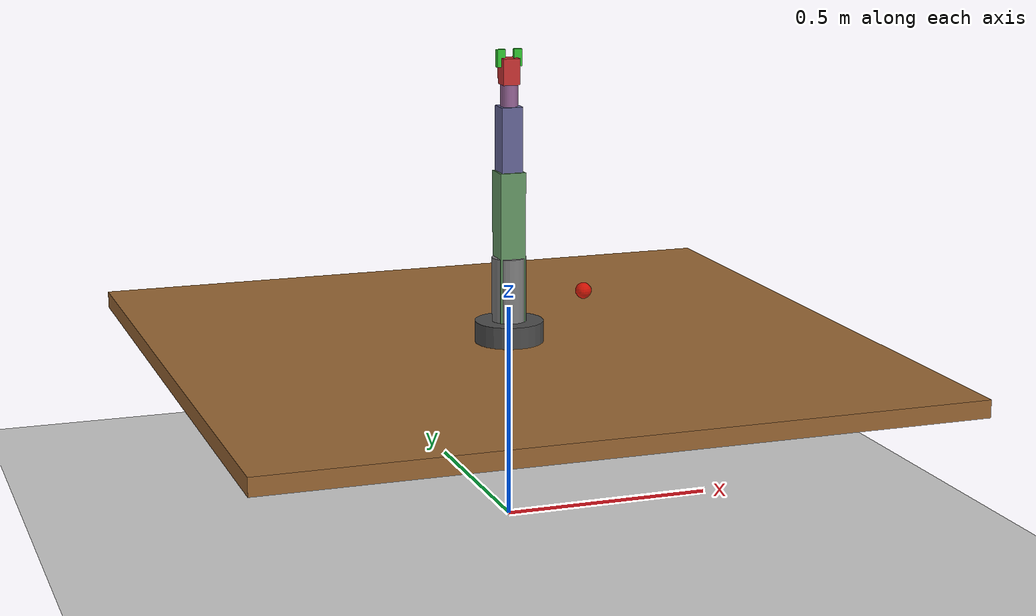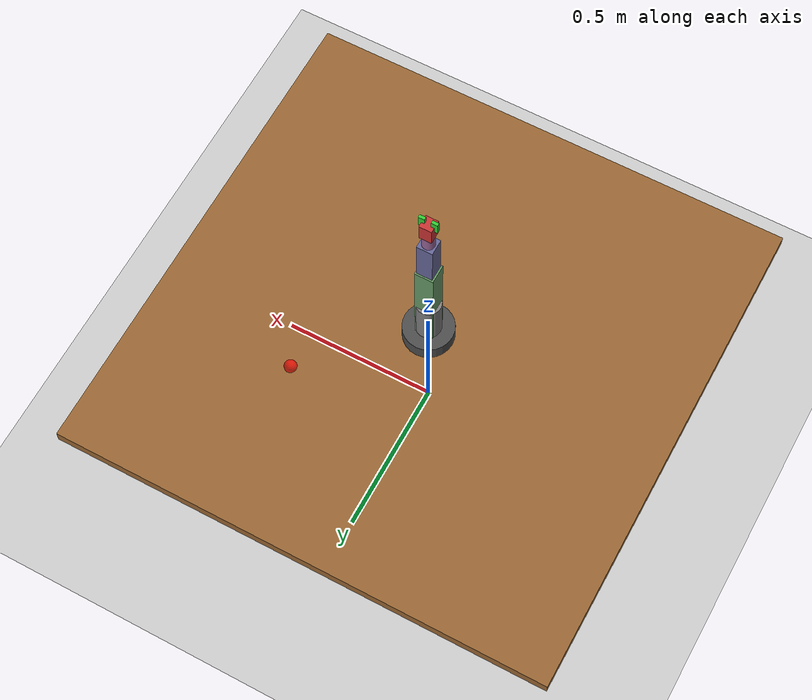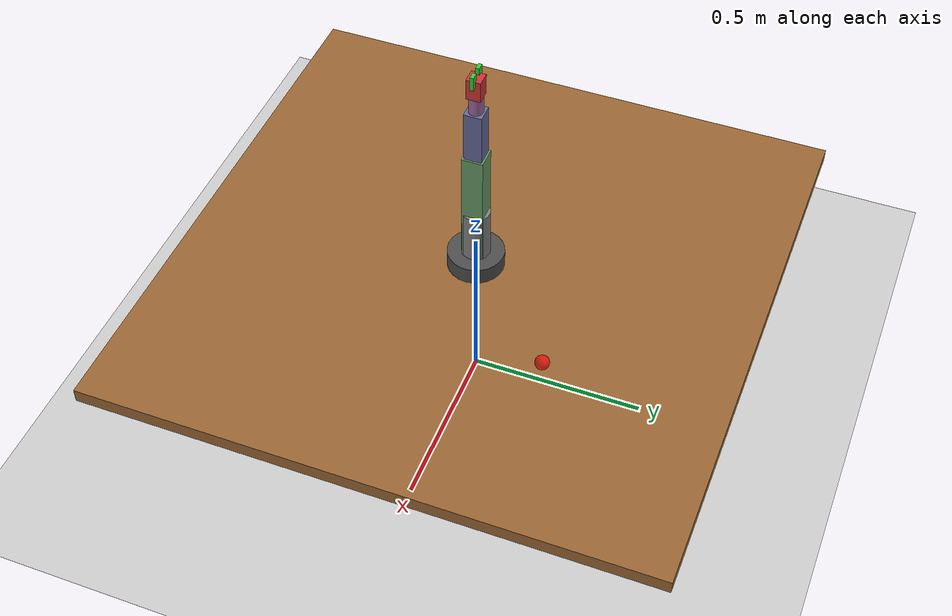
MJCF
<mujoco model="robot_arm">
  <compiler angle="radian" coordinate="local"/>

  <default>
    <joint armature="0.1" damping="1" limited="true"/>
    <geom contype="1" conaffinity="1" condim="3" friction="1 0.5 0.005" margin="0.001" material="gray"/>
  </default>

  <asset>
    <material name="gray" rgba="0.5 0.5 0.5 1"/>
    <material name="red" rgba="1 0 0 1"/>
    <material name="green" rgba="0 1 0 1"/>
    <material name="blue" rgba="0 0 1 1"/>
    <material name="white" rgba="1 1 1 1"/>
  </asset>

  <worldbody>
    <!-- Floor -->
    <geom name="floor" type="plane" size="2 2 0.1" rgba="0.8 0.8 0.8 1"/>

    <!-- Table -->
    <geom name="table" type="box" size="0.8 0.8 0.02" pos="0 0 0.4" rgba="0.6 0.4 0.2 1"/>

    <!-- Robot base -->
    <body name="base" pos="0 0 0.42">
      <geom name="base_geom" type="cylinder" size="0.08 0.05" rgba="0.3 0.3 0.3 1"/>

      <!-- Joint 1: Base rotation -->
      <joint name="joint1" type="hinge" axis="0 0 1" range="-3.14 3.14" pos="0 0 0"/>

      <!-- Link 1 -->
      <body name="link1" pos="0 0 0.05">
        <geom name="link1_geom" type="cylinder" size="0.04 0.15" rgba="0.5 0.5 0.5 1"/>

        <!-- Joint 2: Shoulder -->
        <joint name="joint2" type="hinge" axis="0 1 0" range="-1.57 1.57" pos="0 0 0.15"/>

        <!-- Link 2 -->
        <body name="link2" pos="0 0 0.15">
          <geom name="link2_geom" type="box" size="0.03 0.03 0.2" rgba="0.4 0.6 0.4 1"/>

          <!-- Joint 3: Elbow -->
          <joint name="joint3" type="hinge" axis="0 1 0" range="-2.36 0" pos="0 0 0.2"/>

          <!-- Link 3 -->
          <body name="link3" pos="0 0 0.2">
            <geom name="link3_geom" type="box" size="0.025 0.025 0.15" rgba="0.4 0.4 0.6 1"/>

            <!-- Joint 4: Wrist pitch -->
            <joint name="joint4" type="hinge" axis="0 1 0" range="-1.57 1.57" pos="0 0 0.15"/>

            <!-- Link 4 -->
            <body name="link4" pos="0 0 0.15">
              <geom name="link4_geom" type="cylinder" size="0.02 0.08" rgba="0.6 0.4 0.6 1"/>

              <!-- Joint 5: Wrist roll -->
              <joint name="joint5" type="hinge" axis="0 0 1" range="-3.14 3.14" pos="0 0 0.08"/>

              <!-- End effector -->
              <body name="end_effector" pos="0 0 0.08">
                <geom name="ee_geom" type="box" size="0.02 0.02 0.03" rgba="0.8 0.2 0.2 1"/>

                <!-- Gripper finger 1 -->
                <body name="finger1" pos="0.02 0 0.03">
                  <geom name="finger1_geom" type="box" size="0.01 0.005 0.02" rgba="0.2 0.8 0.2 1"/>
                  <joint name="gripper_joint1" type="slide" axis="1 0 0" range="0 0.04"/>
                </body>

                <!-- Gripper finger 2 -->
                <body name="finger2" pos="-0.02 0 0.03">
                  <geom name="finger2_geom" type="box" size="0.01 0.005 0.02" rgba="0.2 0.8 0.2 1"/>
                  <joint name="gripper_joint2" type="slide" axis="-1 0 0" range="0 0.04"/>
                </body>
              </body>
            </body>
          </body>
        </body>
      </body>
    </body>

    <!-- Target object -->
    <body name="target" pos="0.3 0.3 0.45">
      <geom name="target_geom" type="sphere" size="0.02" rgba="1 0 0 0.7"/>
      <joint name="target_free" type="free"/>
    </body>
  </worldbody>

  <actuator>
    <motor name="motor1" joint="joint1" gear="100"/>
    <motor name="motor2" joint="joint2" gear="100"/>
    <motor name="motor3" joint="joint3" gear="100"/>
    <motor name="motor4" joint="joint4" gear="50"/>
    <motor name="motor5" joint="joint5" gear="50"/>
    <motor name="gripper_motor1" joint="gripper_joint1" gear="10"/>
    <motor name="gripper_motor2" joint="gripper_joint2" gear="10"/>
  </actuator>

  <sensor>
    <framepos name="ee_position" objtype="body" objname="end_effector"/>
    <framequat name="ee_orientation" objtype="body" objname="end_effector"/>
  </sensor>
</mujoco>
